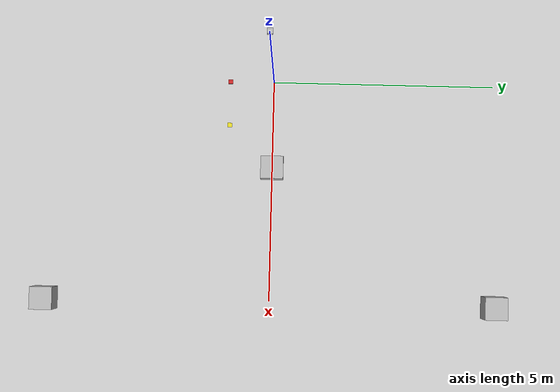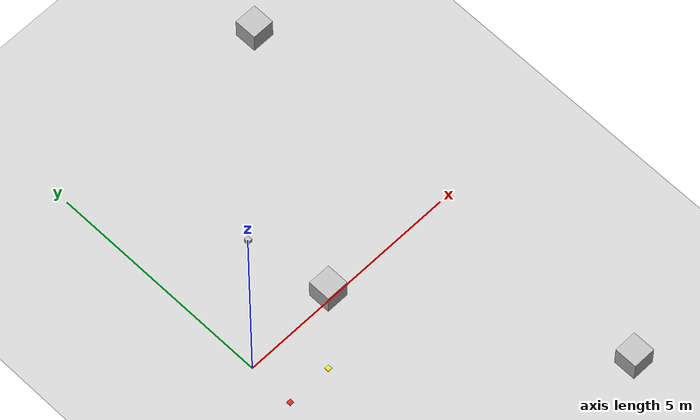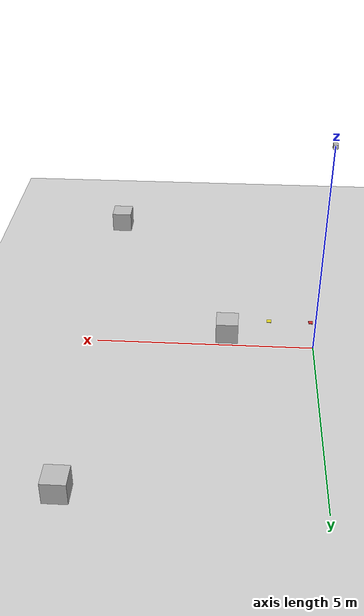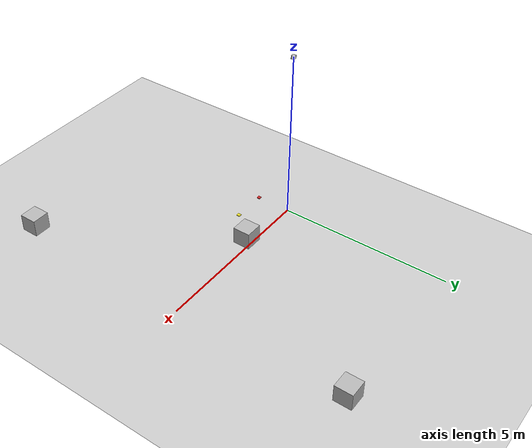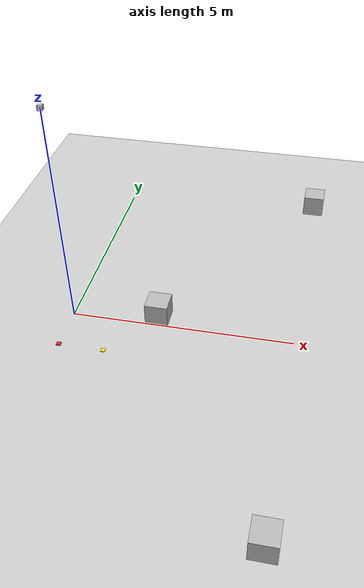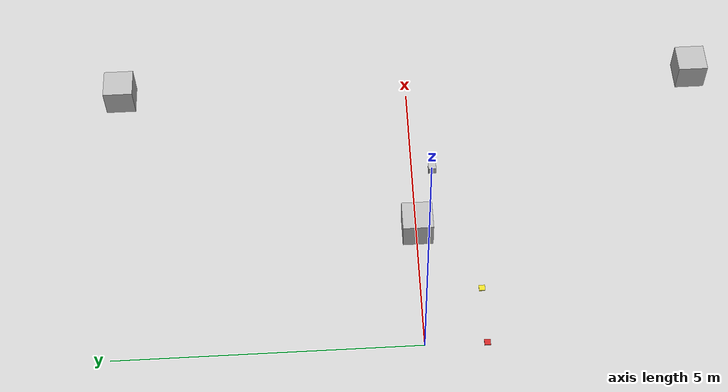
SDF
<sdf version="1.6">
 <world name="default">
  <light name="sun" type="directional">
   <pose>0 0 10 0 -0 0</pose>
   <diffuse>0.8 0.8 0.8 1</diffuse>
   <specular>0.2 0.2 0.2 1</specular>
   <attenuation>
    <range>1000</range>
    <constant>0.9</constant>
    <linear>0.01</linear>
    <quadratic>0.001</quadratic>
   </attenuation>
   <direction>-0.5 0.1 -0.9</direction>
  </light>
  <model name="ground_plane">
   <static>1</static>
   <link name="link">
    <collision name="collision">
     <geometry><plane><normal>0 0 1</normal><size>100 100</size></plane></geometry>
     <surface><friction><ode><mu>100</mu><mu2>50</mu2></ode></friction></surface>
    </collision>
    <visual name="visual">
     <cast_shadows>0</cast_shadows>
     <geometry><plane><normal>0 0 1</normal><size>100 100</size></plane></geometry>
     <material>
      <script><uri>file://media/materials/scripts/gazebo.material</uri><name>Gazebo/Grey</name></script>
     </material>
    </visual>
   </link>
  </model>
  <model name="fiducial_camera">
   <pose>0 0 5 0 1.57 0</pose>
   <static>1</static>
   <link name="link">
    <collision name="collision"><geometry><box><size>0.1 0.1 0.1</size></box></geometry></collision>
    <visual name="visual"><geometry><box><size>0.1 0.1 0.1</size></box></geometry></visual>
    <sensor name="camera" type="camera">
     <camera name="__default__">
      <horizontal_fov>1.047</horizontal_fov>
      <image><width>640</width><height>480</height></image>
      <clip><near>0.1</near><far>100</far></clip>
     </camera>
     <always_on>1</always_on>
     <update_rate>10</update_rate>
     <visualize>1</visualize>
     <plugin name="fiducial_camera" filename="libFiducialCameraPlugin.so">
      <fiducial>fiducial_01</fiducial>
      <fiducial>fiducial_02</fiducial>
     </plugin>
    </sensor>
   </link>
  </model>
  <model name="fiducial_01">
   <pose>0 -1 0.01 0 -0 0</pose>
   <link name="link">
    <inertial>
     <mass>0.1</mass>
     <inertia><ixx>8.6e-05</ixx><iyy>8.6e-05</iyy><izz>0.000164</izz><ixy>0</ixy><ixz>0</ixz><iyz>0</iyz></inertia>
    </inertial>
    <collision name="collision"><geometry><box><size>0.1 0.1 0.02</size></box></geometry></collision>
    <visual name="visual">
     <geometry><box><size>0.1 0.1 0.02</size></box></geometry>
     <material><script><name>Gazebo/Red</name><uri>__default__</uri></script></material>
    </visual>
   </link>
  </model>
  <model name="fiducial_02">
   <pose>1 -1 0.01 0 -0 0</pose>
   <link name="link">
    <inertial>
     <mass>0.1</mass>
     <inertia><ixx>8.6e-05</ixx><iyy>8.6e-05</iyy><izz>0.000164</izz><ixy>0</ixy><ixz>0</ixz><iyz>0</iyz></inertia>
    </inertial>
    <collision name="collision"><geometry><box><size>0.1 0.1 0.02</size></box></geometry></collision>
    <visual name="visual">
     <geometry><box><size>0.1 0.1 0.02</size></box></geometry>
     <material><script><name>Gazebo/Yellow</name><uri>__default__</uri></script></material>
    </visual>
   </link>
  </model>
  <gravity>0 0 -9.8</gravity>
  <magnetic_field>6e-06 2.3e-05 -4.2e-05</magnetic_field>
  <atmosphere type="adiabatic"/>
  <physics name="default_physics" default="0" type="ode">
   <max_step_size>0.001</max_step_size>
   <real_time_factor>1</real_time_factor>
   <real_time_update_rate>1000</real_time_update_rate>
  </physics>
  <scene><ambient>0.4 0.4 0.4 1</ambient><background>0.7 0.7 0.7 1</background><shadows>1</shadows></scene>
  <audio><device>default</device></audio>
  <spherical_coordinates>
   <surface_model>EARTH_WGS84</surface_model>
   <latitude_deg>0</latitude_deg>
   <longitude_deg>0</longitude_deg>
   <elevation>0</elevation>
   <heading_deg>0</heading_deg>
  </spherical_coordinates>
  <model name="box_1">
   <link name="base_link">
    <inertial>
     <mass>1</mass>
     <inertia><ixx>0.015</ixx><ixy>0</ixy><ixz>0</ixz><iyy>0.0375</iyy><iyz>0</iyz><izz>0.0375</izz></inertia>
    </inertial>
    <collision name="base_link_collision"><geometry><box><size>1 1 1</size></box></geometry></collision>
    <visual name="base_link_visual">
     <geometry>
      <mesh><scale>1 1 1</scale><uri>/home/sneha/catkin_ws/src/awesomo/meshes/real_ar1.dae</uri></mesh>
     </geometry>
    </visual>
   </link>
   <pose>2.00004 1.3e-05 0.499997 -6e-06 -0 1.7e-05</pose>
  </model>
  <model name="box_2">
   <link name="base_link">
    <inertial>
     <mass>1</mass>
     <inertia><ixx>0.015</ixx><ixy>0</ixy><ixz>0</ixz><iyy>0.0375</iyy><iyz>0</iyz><izz>0.0375</izz></inertia>
    </inertial>
    <collision name="base_link_collision"><geometry><box><size>1 1 1</size></box></geometry></collision>
    <visual name="base_link_visual">
     <geometry>
      <mesh><scale>1 1 1</scale><uri>/home/sneha/catkin_ws/src/awesomo/meshes/real_ar2.dae</uri></mesh>
     </geometry>
    </visual>
   </link>
   <pose>4.99998 5 0.5 -2e-06 0 1e-06</pose>
  </model>
  <model name="box_3">
   <link name="base_link">
    <inertial>
     <mass>1</mass>
     <inertia><ixx>0.015</ixx><ixy>0</ixy><ixz>0</ixz><iyy>0.0375</iyy><iyz>0</iyz><izz>0.0375</izz></inertia>
    </inertial>
    <collision name="base_link_collision"><geometry><box><size>1 1 1</size></box></geometry></collision>
    <visual name="base_link_visual">
     <geometry>
      <mesh><scale>1 1 1</scale><uri>/home/sneha/catkin_ws/src/awesomo/meshes/real_ar3.dae</uri></mesh>
     </geometry>
    </visual>
   </link>
   <pose>4.99998 -5 0.5 -2e-06 0 1e-06</pose>
  </model>
  <light name="user_point_light_0" type="point">
   <pose>1.27972 0.838678 1 0 -0 0</pose>
   <diffuse>0.5 0.5 0.5 1</diffuse>
   <specular>0.1 0.1 0.1 1</specular>
   <attenuation>
    <range>20</range>
    <constant>0.5</constant>
    <linear>0.01</linear>
    <quadratic>0.001</quadratic>
   </attenuation>
   <cast_shadows>0</cast_shadows>
   <direction>0 0 -1</direction>
  </light>
  <light name="user_point_light_1" type="point">
   <pose>0.482781 1.85461 1 0 -0 0</pose>
   <diffuse>0.5 0.5 0.5 1</diffuse>
   <specular>0.1 0.1 0.1 1</specular>
   <attenuation>
    <range>20</range>
    <constant>0.5</constant>
    <linear>0.01</linear>
    <quadratic>0.001</quadratic>
   </attenuation>
   <cast_shadows>0</cast_shadows>
   <direction>0 0 -1</direction>
  </light>
 </world>
</sdf>
